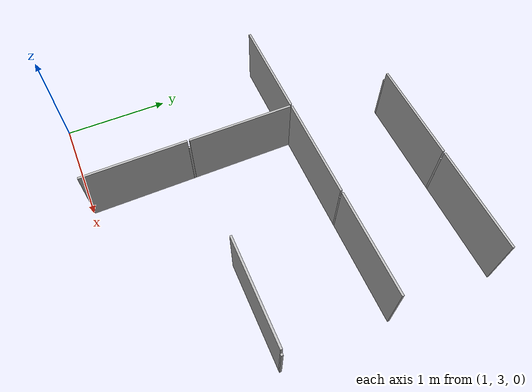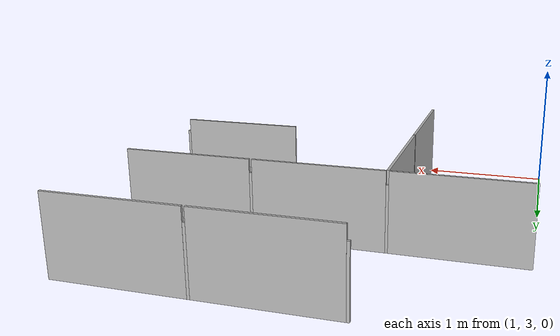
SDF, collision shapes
<sdf version="1.7">
 <model name="maze_midterm_validation">
  <link name="metal_joint_2_4::link">
   <pose>2 4 0.25 0 -0 0</pose>
   <visual name="visual_metal_joint_0">
    <geometry><box><size>0.02 0.02 0.5</size></box></geometry>
    <material>
     <script>
      <uri>model://metal_joint/materials/scripts</uri>
      <uri>model://metal_joint/materials/textures</uri>
      <name>metal_joint</name>
     </script>
     <shader type="pixel"/>
    </material>
   </visual>
   <collision name="metal_joint_01">
    <geometry><box><size>0.02 0.02 0.5</size></box></geometry>
    <surface>
     <friction>
      <ode><mu>1</mu><mu2>1</mu2><fdir1>0 0 0</fdir1><slip1>0</slip1><slip2>0</slip2></ode>
      <torsional>
       <coefficient>1</coefficient>
       <patch_radius>0</patch_radius>
       <surface_radius>0</surface_radius>
       <use_patch_radius>1</use_patch_radius>
       <ode><slip>0</slip></ode>
      </torsional>
     </friction>
     <bounce><restitution_coefficient>0</restitution_coefficient><threshold>1e+06</threshold></bounce>
     <contact>
      <collide_without_contact>0</collide_without_contact>
      <collide_without_contact_bitmask>1</collide_without_contact_bitmask>
      <collide_bitmask>1</collide_bitmask>
      <ode>
       <soft_cfm>0</soft_cfm>
       <soft_erp>0.2</soft_erp>
       <kp>1e+13</kp>
       <kd>1</kd>
       <max_vel>0.01</max_vel>
       <min_depth>0</min_depth>
      </ode>
      <bullet>
       <split_impulse>1</split_impulse>
       <split_impulse_penetration_threshold>-0.01</split_impulse_penetration_threshold>
       <soft_cfm>0</soft_cfm>
       <soft_erp>0.2</soft_erp>
       <kp>1e+13</kp>
       <kd>1</kd>
      </bullet>
     </contact>
    </surface>
   </collision>
  </link>
  <link name="metal_joint_2_5::link">
   <pose>2 5 0.25 0 -0 0</pose>
   <visual name="visual_metal_joint_0">
    <geometry><box><size>0.02 0.02 0.5</size></box></geometry>
    <material>
     <script>
      <uri>model://metal_joint/materials/scripts</uri>
      <uri>model://metal_joint/materials/textures</uri>
      <name>metal_joint</name>
     </script>
     <shader type="pixel"/>
    </material>
   </visual>
   <collision name="metal_joint_01">
    <geometry><box><size>0.02 0.02 0.5</size></box></geometry>
    <surface>
     <friction>
      <ode><mu>1</mu><mu2>1</mu2><fdir1>0 0 0</fdir1><slip1>0</slip1><slip2>0</slip2></ode>
      <torsional>
       <coefficient>1</coefficient>
       <patch_radius>0</patch_radius>
       <surface_radius>0</surface_radius>
       <use_patch_radius>1</use_patch_radius>
       <ode><slip>0</slip></ode>
      </torsional>
     </friction>
     <bounce><restitution_coefficient>0</restitution_coefficient><threshold>1e+06</threshold></bounce>
     <contact>
      <collide_without_contact>0</collide_without_contact>
      <collide_without_contact_bitmask>1</collide_without_contact_bitmask>
      <collide_bitmask>1</collide_bitmask>
      <ode>
       <soft_cfm>0</soft_cfm>
       <soft_erp>0.2</soft_erp>
       <kp>1e+13</kp>
       <kd>1</kd>
       <max_vel>0.01</max_vel>
       <min_depth>0</min_depth>
      </ode>
      <bullet>
       <split_impulse>1</split_impulse>
       <split_impulse_penetration_threshold>-0.01</split_impulse_penetration_threshold>
       <soft_cfm>0</soft_cfm>
       <soft_erp>0.2</soft_erp>
       <kp>1e+13</kp>
       <kd>1</kd>
      </bullet>
     </contact>
    </surface>
   </collision>
  </link>
  <link name="metal_joint_2_6_b::link">
   <pose>2 6 0.25 0 -0 0</pose>
   <visual name="visual_metal_joint_0">
    <geometry><box><size>0.02 0.02 0.5</size></box></geometry>
    <material>
     <script>
      <uri>model://metal_joint/materials/scripts</uri>
      <uri>model://metal_joint/materials/textures</uri>
      <name>metal_joint</name>
     </script>
     <shader type="pixel"/>
    </material>
   </visual>
   <collision name="metal_joint_01">
    <geometry><box><size>0.02 0.02 0.5</size></box></geometry>
    <surface>
     <friction>
      <ode><mu>1</mu><mu2>1</mu2><fdir1>0 0 0</fdir1><slip1>0</slip1><slip2>0</slip2></ode>
      <torsional>
       <coefficient>1</coefficient>
       <patch_radius>0</patch_radius>
       <surface_radius>0</surface_radius>
       <use_patch_radius>1</use_patch_radius>
       <ode><slip>0</slip></ode>
      </torsional>
     </friction>
     <bounce><restitution_coefficient>0</restitution_coefficient><threshold>1e+06</threshold></bounce>
     <contact>
      <collide_without_contact>0</collide_without_contact>
      <collide_without_contact_bitmask>1</collide_without_contact_bitmask>
      <collide_bitmask>1</collide_bitmask>
      <ode>
       <soft_cfm>0</soft_cfm>
       <soft_erp>0.2</soft_erp>
       <kp>1e+13</kp>
       <kd>1</kd>
       <max_vel>0.01</max_vel>
       <min_depth>0</min_depth>
      </ode>
      <bullet>
       <split_impulse>1</split_impulse>
       <split_impulse_penetration_threshold>-0.01</split_impulse_penetration_threshold>
       <soft_cfm>0</soft_cfm>
       <soft_erp>0.2</soft_erp>
       <kp>1e+13</kp>
       <kd>1</kd>
      </bullet>
     </contact>
    </surface>
   </collision>
  </link>
  <link name="metal_joint_3_5::link">
   <pose>3 5 0.25 0 -0 0</pose>
   <visual name="visual_metal_joint_0">
    <geometry><box><size>0.02 0.02 0.5</size></box></geometry>
    <material>
     <script>
      <uri>model://metal_joint/materials/scripts</uri>
      <uri>model://metal_joint/materials/textures</uri>
      <name>metal_joint</name>
     </script>
     <shader type="pixel"/>
    </material>
   </visual>
   <collision name="metal_joint_01">
    <geometry><box><size>0.02 0.02 0.5</size></box></geometry>
    <surface>
     <friction>
      <ode><mu>1</mu><mu2>1</mu2><fdir1>0 0 0</fdir1><slip1>0</slip1><slip2>0</slip2></ode>
      <torsional>
       <coefficient>1</coefficient>
       <patch_radius>0</patch_radius>
       <surface_radius>0</surface_radius>
       <use_patch_radius>1</use_patch_radius>
       <ode><slip>0</slip></ode>
      </torsional>
     </friction>
     <bounce><restitution_coefficient>0</restitution_coefficient><threshold>1e+06</threshold></bounce>
     <contact>
      <collide_without_contact>0</collide_without_contact>
      <collide_without_contact_bitmask>1</collide_without_contact_bitmask>
      <collide_bitmask>1</collide_bitmask>
      <ode>
       <soft_cfm>0</soft_cfm>
       <soft_erp>0.2</soft_erp>
       <kp>1e+13</kp>
       <kd>1</kd>
       <max_vel>0.01</max_vel>
       <min_depth>0</min_depth>
      </ode>
      <bullet>
       <split_impulse>1</split_impulse>
       <split_impulse_penetration_threshold>-0.01</split_impulse_penetration_threshold>
       <soft_cfm>0</soft_cfm>
       <soft_erp>0.2</soft_erp>
       <kp>1e+13</kp>
       <kd>1</kd>
      </bullet>
     </contact>
    </surface>
   </collision>
  </link>
  <link name="metal_joint_3_6_b::link">
   <pose>3 6 0.25 0 -0 0</pose>
   <visual name="visual_metal_joint_0">
    <geometry><box><size>0.02 0.02 0.5</size></box></geometry>
    <material>
     <script>
      <uri>model://metal_joint/materials/scripts</uri>
      <uri>model://metal_joint/materials/textures</uri>
      <name>metal_joint</name>
     </script>
     <shader type="pixel"/>
    </material>
   </visual>
   <collision name="metal_joint_01">
    <geometry><box><size>0.02 0.02 0.5</size></box></geometry>
    <surface>
     <friction>
      <ode><mu>1</mu><mu2>1</mu2><fdir1>0 0 0</fdir1><slip1>0</slip1><slip2>0</slip2></ode>
      <torsional>
       <coefficient>1</coefficient>
       <patch_radius>0</patch_radius>
       <surface_radius>0</surface_radius>
       <use_patch_radius>1</use_patch_radius>
       <ode><slip>0</slip></ode>
      </torsional>
     </friction>
     <bounce><restitution_coefficient>0</restitution_coefficient><threshold>1e+06</threshold></bounce>
     <contact>
      <collide_without_contact>0</collide_without_contact>
      <collide_without_contact_bitmask>1</collide_without_contact_bitmask>
      <collide_bitmask>1</collide_bitmask>
      <ode>
       <soft_cfm>0</soft_cfm>
       <soft_erp>0.2</soft_erp>
       <kp>1e+13</kp>
       <kd>1</kd>
       <max_vel>0.01</max_vel>
       <min_depth>0</min_depth>
      </ode>
      <bullet>
       <split_impulse>1</split_impulse>
       <split_impulse_penetration_threshold>-0.01</split_impulse_penetration_threshold>
       <soft_cfm>0</soft_cfm>
       <soft_erp>0.2</soft_erp>
       <kp>1e+13</kp>
       <kd>1</kd>
      </bullet>
     </contact>
    </surface>
   </collision>
  </link>
  <link name="metal_joint_4_4::link">
   <pose>4 4 0.25 0 -0 0</pose>
   <visual name="visual_metal_joint_0">
    <geometry><box><size>0.02 0.02 0.5</size></box></geometry>
    <material>
     <script>
      <uri>model://metal_joint/materials/scripts</uri>
      <uri>model://metal_joint/materials/textures</uri>
      <name>metal_joint</name>
     </script>
     <shader type="pixel"/>
    </material>
   </visual>
   <collision name="metal_joint_01">
    <geometry><box><size>0.02 0.02 0.5</size></box></geometry>
    <surface>
     <friction>
      <ode><mu>1</mu><mu2>1</mu2><fdir1>0 0 0</fdir1><slip1>0</slip1><slip2>0</slip2></ode>
      <torsional>
       <coefficient>1</coefficient>
       <patch_radius>0</patch_radius>
       <surface_radius>0</surface_radius>
       <use_patch_radius>1</use_patch_radius>
       <ode><slip>0</slip></ode>
      </torsional>
     </friction>
     <bounce><restitution_coefficient>0</restitution_coefficient><threshold>1e+06</threshold></bounce>
     <contact>
      <collide_without_contact>0</collide_without_contact>
      <collide_without_contact_bitmask>1</collide_without_contact_bitmask>
      <collide_bitmask>1</collide_bitmask>
      <ode>
       <soft_cfm>0</soft_cfm>
       <soft_erp>0.2</soft_erp>
       <kp>1e+13</kp>
       <kd>1</kd>
       <max_vel>0.01</max_vel>
       <min_depth>0</min_depth>
      </ode>
      <bullet>
       <split_impulse>1</split_impulse>
       <split_impulse_penetration_threshold>-0.01</split_impulse_penetration_threshold>
       <soft_cfm>0</soft_cfm>
       <soft_erp>0.2</soft_erp>
       <kp>1e+13</kp>
       <kd>1</kd>
      </bullet>
     </contact>
    </surface>
   </collision>
  </link>
  <link name="metal_plate_2_4_a::main">
   <pose>2 4 0 0 -0 0</pose>
   <visual name="visual">
    <pose>0.01 -0.01 0 3.14159 -1.57059 3.14159</pose>
    <geometry><mesh><scale>1 1 1</scale><uri>model://metal_plate/meshes/metal_plate.dae</uri></mesh></geometry>
    <material><shader type="pixel"/></material>
   </visual>
   <collision name="collision">
    <pose>0 -0.5 0.3 -1.571 -0 -1.571</pose>
    <geometry><box><size>0.98 0.6 0.02</size></box></geometry>
    <surface>
     <friction>
      <ode><mu>1</mu><mu2>1</mu2><fdir1>0 0 0</fdir1><slip1>0</slip1><slip2>0</slip2></ode>
      <torsional>
       <coefficient>1</coefficient>
       <patch_radius>0</patch_radius>
       <surface_radius>0</surface_radius>
       <use_patch_radius>1</use_patch_radius>
       <ode><slip>0</slip></ode>
      </torsional>
     </friction>
     <bounce><restitution_coefficient>0</restitution_coefficient><threshold>1e+06</threshold></bounce>
     <contact>
      <collide_without_contact>0</collide_without_contact>
      <collide_without_contact_bitmask>1</collide_without_contact_bitmask>
      <collide_bitmask>1</collide_bitmask>
      <ode>
       <soft_cfm>0</soft_cfm>
       <soft_erp>0.2</soft_erp>
       <kp>1e+13</kp>
       <kd>1</kd>
       <max_vel>0.01</max_vel>
       <min_depth>0</min_depth>
      </ode>
      <bullet>
       <split_impulse>1</split_impulse>
       <split_impulse_penetration_threshold>-0.01</split_impulse_penetration_threshold>
       <soft_cfm>0</soft_cfm>
       <soft_erp>0.2</soft_erp>
       <kp>1e+13</kp>
       <kd>1</kd>
      </bullet>
     </contact>
    </surface>
   </collision>
  </link>
  <link name="metal_plate_2_5_a::main">
   <pose>2 5 0 0 -0 0</pose>
   <visual name="visual">
    <pose>0.01 -0.01 0 3.14159 -1.57059 3.14159</pose>
    <geometry><mesh><scale>1 1 1</scale><uri>model://metal_plate/meshes/metal_plate.dae</uri></mesh></geometry>
    <material><shader type="pixel"/></material>
   </visual>
   <collision name="collision">
    <pose>0 -0.5 0.3 -1.571 -0 -1.571</pose>
    <geometry><box><size>0.98 0.6 0.02</size></box></geometry>
    <surface>
     <friction>
      <ode><mu>1</mu><mu2>1</mu2><fdir1>0 0 0</fdir1><slip1>0</slip1><slip2>0</slip2></ode>
      <torsional>
       <coefficient>1</coefficient>
       <patch_radius>0</patch_radius>
       <surface_radius>0</surface_radius>
       <use_patch_radius>1</use_patch_radius>
       <ode><slip>0</slip></ode>
      </torsional>
     </friction>
     <bounce><restitution_coefficient>0</restitution_coefficient><threshold>1e+06</threshold></bounce>
     <contact>
      <collide_without_contact>0</collide_without_contact>
      <collide_without_contact_bitmask>1</collide_without_contact_bitmask>
      <collide_bitmask>1</collide_bitmask>
      <ode>
       <soft_cfm>0</soft_cfm>
       <soft_erp>0.2</soft_erp>
       <kp>1e+13</kp>
       <kd>1</kd>
       <max_vel>0.01</max_vel>
       <min_depth>0</min_depth>
      </ode>
      <bullet>
       <split_impulse>1</split_impulse>
       <split_impulse_penetration_threshold>-0.01</split_impulse_penetration_threshold>
       <soft_cfm>0</soft_cfm>
       <soft_erp>0.2</soft_erp>
       <kp>1e+13</kp>
       <kd>1</kd>
      </bullet>
     </contact>
    </surface>
   </collision>
  </link>
  <link name="metal_plate_2_5_c::main">
   <pose>2 5 0 0 0 -1.5708</pose>
   <visual name="visual">
    <pose>0.01 -0.01 0 3.14159 -1.57059 3.14159</pose>
    <geometry><mesh><scale>1 1 1</scale><uri>model://metal_plate/meshes/metal_plate.dae</uri></mesh></geometry>
    <material><shader type="pixel"/></material>
   </visual>
   <collision name="collision">
    <pose>0 -0.5 0.3 -1.571 -0 -1.571</pose>
    <geometry><box><size>0.98 0.6 0.02</size></box></geometry>
    <surface>
     <friction>
      <ode><mu>1</mu><mu2>1</mu2><fdir1>0 0 0</fdir1><slip1>0</slip1><slip2>0</slip2></ode>
      <torsional>
       <coefficient>1</coefficient>
       <patch_radius>0</patch_radius>
       <surface_radius>0</surface_radius>
       <use_patch_radius>1</use_patch_radius>
       <ode><slip>0</slip></ode>
      </torsional>
     </friction>
     <bounce><restitution_coefficient>0</restitution_coefficient><threshold>1e+06</threshold></bounce>
     <contact>
      <collide_without_contact>0</collide_without_contact>
      <collide_without_contact_bitmask>1</collide_without_contact_bitmask>
      <collide_bitmask>1</collide_bitmask>
      <ode>
       <soft_cfm>0</soft_cfm>
       <soft_erp>0.2</soft_erp>
       <kp>1e+13</kp>
       <kd>1</kd>
       <max_vel>0.01</max_vel>
       <min_depth>0</min_depth>
      </ode>
      <bullet>
       <split_impulse>1</split_impulse>
       <split_impulse_penetration_threshold>-0.01</split_impulse_penetration_threshold>
       <soft_cfm>0</soft_cfm>
       <soft_erp>0.2</soft_erp>
       <kp>1e+13</kp>
       <kd>1</kd>
      </bullet>
     </contact>
    </surface>
   </collision>
  </link>
  <link name="metal_plate_2_6_b::main">
   <pose>2 6 0 0 -0 1.571</pose>
   <visual name="visual">
    <pose>0.01 -0.01 0 3.14159 -1.57059 3.14159</pose>
    <geometry><mesh><scale>1 1 1</scale><uri>model://metal_plate/meshes/metal_plate.dae</uri></mesh></geometry>
    <material><shader type="pixel"/></material>
   </visual>
   <collision name="collision">
    <pose>0 -0.5 0.3 -1.571 -0 -1.571</pose>
    <geometry><box><size>0.98 0.6 0.02</size></box></geometry>
    <surface>
     <friction>
      <ode><mu>1</mu><mu2>1</mu2><fdir1>0 0 0</fdir1><slip1>0</slip1><slip2>0</slip2></ode>
      <torsional>
       <coefficient>1</coefficient>
       <patch_radius>0</patch_radius>
       <surface_radius>0</surface_radius>
       <use_patch_radius>1</use_patch_radius>
       <ode><slip>0</slip></ode>
      </torsional>
     </friction>
     <bounce><restitution_coefficient>0</restitution_coefficient><threshold>1e+06</threshold></bounce>
     <contact>
      <collide_without_contact>0</collide_without_contact>
      <collide_without_contact_bitmask>1</collide_without_contact_bitmask>
      <collide_bitmask>1</collide_bitmask>
      <ode>
       <soft_cfm>0</soft_cfm>
       <soft_erp>0.2</soft_erp>
       <kp>1e+13</kp>
       <kd>1</kd>
       <max_vel>0.01</max_vel>
       <min_depth>0</min_depth>
      </ode>
      <bullet>
       <split_impulse>1</split_impulse>
       <split_impulse_penetration_threshold>-0.01</split_impulse_penetration_threshold>
       <soft_cfm>0</soft_cfm>
       <soft_erp>0.2</soft_erp>
       <kp>1e+13</kp>
       <kd>1</kd>
      </bullet>
     </contact>
    </surface>
   </collision>
  </link>
  <link name="metal_plate_3_5_c::main">
   <pose>3 5 0 0 0 -1.5708</pose>
   <visual name="visual">
    <pose>0.01 -0.01 0 3.14159 -1.57059 3.14159</pose>
    <geometry><mesh><scale>1 1 1</scale><uri>model://metal_plate/meshes/metal_plate.dae</uri></mesh></geometry>
    <material><shader type="pixel"/></material>
   </visual>
   <collision name="collision">
    <pose>0 -0.5 0.3 -1.571 -0 -1.571</pose>
    <geometry><box><size>0.98 0.6 0.02</size></box></geometry>
    <surface>
     <friction>
      <ode><mu>1</mu><mu2>1</mu2><fdir1>0 0 0</fdir1><slip1>0</slip1><slip2>0</slip2></ode>
      <torsional>
       <coefficient>1</coefficient>
       <patch_radius>0</patch_radius>
       <surface_radius>0</surface_radius>
       <use_patch_radius>1</use_patch_radius>
       <ode><slip>0</slip></ode>
      </torsional>
     </friction>
     <bounce><restitution_coefficient>0</restitution_coefficient><threshold>1e+06</threshold></bounce>
     <contact>
      <collide_without_contact>0</collide_without_contact>
      <collide_without_contact_bitmask>1</collide_without_contact_bitmask>
      <collide_bitmask>1</collide_bitmask>
      <ode>
       <soft_cfm>0</soft_cfm>
       <soft_erp>0.2</soft_erp>
       <kp>1e+13</kp>
       <kd>1</kd>
       <max_vel>0.01</max_vel>
       <min_depth>0</min_depth>
      </ode>
      <bullet>
       <split_impulse>1</split_impulse>
       <split_impulse_penetration_threshold>-0.01</split_impulse_penetration_threshold>
       <soft_cfm>0</soft_cfm>
       <soft_erp>0.2</soft_erp>
       <kp>1e+13</kp>
       <kd>1</kd>
      </bullet>
     </contact>
    </surface>
   </collision>
  </link>
  <link name="metal_plate_3_6_b::main">
   <pose>3 6 0 0 -0 1.571</pose>
   <visual name="visual">
    <pose>0.01 -0.01 0 3.14159 -1.57059 3.14159</pose>
    <geometry><mesh><scale>1 1 1</scale><uri>model://metal_plate/meshes/metal_plate.dae</uri></mesh></geometry>
    <material><shader type="pixel"/></material>
   </visual>
   <collision name="collision">
    <pose>0 -0.5 0.3 -1.571 -0 -1.571</pose>
    <geometry><box><size>0.98 0.6 0.02</size></box></geometry>
    <surface>
     <friction>
      <ode><mu>1</mu><mu2>1</mu2><fdir1>0 0 0</fdir1><slip1>0</slip1><slip2>0</slip2></ode>
      <torsional>
       <coefficient>1</coefficient>
       <patch_radius>0</patch_radius>
       <surface_radius>0</surface_radius>
       <use_patch_radius>1</use_patch_radius>
       <ode><slip>0</slip></ode>
      </torsional>
     </friction>
     <bounce><restitution_coefficient>0</restitution_coefficient><threshold>1e+06</threshold></bounce>
     <contact>
      <collide_without_contact>0</collide_without_contact>
      <collide_without_contact_bitmask>1</collide_without_contact_bitmask>
      <collide_bitmask>1</collide_bitmask>
      <ode>
       <soft_cfm>0</soft_cfm>
       <soft_erp>0.2</soft_erp>
       <kp>1e+13</kp>
       <kd>1</kd>
       <max_vel>0.01</max_vel>
       <min_depth>0</min_depth>
      </ode>
      <bullet>
       <split_impulse>1</split_impulse>
       <split_impulse_penetration_threshold>-0.01</split_impulse_penetration_threshold>
       <soft_cfm>0</soft_cfm>
       <soft_erp>0.2</soft_erp>
       <kp>1e+13</kp>
       <kd>1</kd>
      </bullet>
     </contact>
    </surface>
   </collision>
  </link>
  <link name="metal_plate_4_4_c::main">
   <pose>4 4 0 0 0 -1.5708</pose>
   <visual name="visual">
    <pose>0.01 -0.01 0 3.14159 -1.57059 3.14159</pose>
    <geometry><mesh><scale>1 1 1</scale><uri>model://metal_plate/meshes/metal_plate.dae</uri></mesh></geometry>
    <material><shader type="pixel"/></material>
   </visual>
   <collision name="collision">
    <pose>0 -0.5 0.3 -1.571 -0 -1.571</pose>
    <geometry><box><size>0.98 0.6 0.02</size></box></geometry>
    <surface>
     <friction>
      <ode><mu>1</mu><mu2>1</mu2><fdir1>0 0 0</fdir1><slip1>0</slip1><slip2>0</slip2></ode>
      <torsional>
       <coefficient>1</coefficient>
       <patch_radius>0</patch_radius>
       <surface_radius>0</surface_radius>
       <use_patch_radius>1</use_patch_radius>
       <ode><slip>0</slip></ode>
      </torsional>
     </friction>
     <bounce><restitution_coefficient>0</restitution_coefficient><threshold>1e+06</threshold></bounce>
     <contact>
      <collide_without_contact>0</collide_without_contact>
      <collide_without_contact_bitmask>1</collide_without_contact_bitmask>
      <collide_bitmask>1</collide_bitmask>
      <ode>
       <soft_cfm>0</soft_cfm>
       <soft_erp>0.2</soft_erp>
       <kp>1e+13</kp>
       <kd>1</kd>
       <max_vel>0.01</max_vel>
       <min_depth>0</min_depth>
      </ode>
      <bullet>
       <split_impulse>1</split_impulse>
       <split_impulse_penetration_threshold>-0.01</split_impulse_penetration_threshold>
       <soft_cfm>0</soft_cfm>
       <soft_erp>0.2</soft_erp>
       <kp>1e+13</kp>
       <kd>1</kd>
      </bullet>
     </contact>
    </surface>
   </collision>
  </link>
  <link name="metal_plate_4_5_c::main">
   <pose>4 5 0 0 0 -1.5708</pose>
   <visual name="visual">
    <pose>0.01 -0.01 0 3.14159 -1.57059 3.14159</pose>
    <geometry><mesh><scale>1 1 1</scale><uri>model://metal_plate/meshes/metal_plate.dae</uri></mesh></geometry>
    <material><shader type="pixel"/></material>
   </visual>
   <collision name="collision">
    <pose>0 -0.5 0.3 -1.571 -0 -1.571</pose>
    <geometry><box><size>0.98 0.6 0.02</size></box></geometry>
    <surface>
     <friction>
      <ode><mu>1</mu><mu2>1</mu2><fdir1>0 0 0</fdir1><slip1>0</slip1><slip2>0</slip2></ode>
      <torsional>
       <coefficient>1</coefficient>
       <patch_radius>0</patch_radius>
       <surface_radius>0</surface_radius>
       <use_patch_radius>1</use_patch_radius>
       <ode><slip>0</slip></ode>
      </torsional>
     </friction>
     <bounce><restitution_coefficient>0</restitution_coefficient><threshold>1e+06</threshold></bounce>
     <contact>
      <collide_without_contact>0</collide_without_contact>
      <collide_without_contact_bitmask>1</collide_without_contact_bitmask>
      <collide_bitmask>1</collide_bitmask>
      <ode>
       <soft_cfm>0</soft_cfm>
       <soft_erp>0.2</soft_erp>
       <kp>1e+13</kp>
       <kd>1</kd>
       <max_vel>0.01</max_vel>
       <min_depth>0</min_depth>
      </ode>
      <bullet>
       <split_impulse>1</split_impulse>
       <split_impulse_penetration_threshold>-0.01</split_impulse_penetration_threshold>
       <soft_cfm>0</soft_cfm>
       <soft_erp>0.2</soft_erp>
       <kp>1e+13</kp>
       <kd>1</kd>
      </bullet>
     </contact>
    </surface>
   </collision>
  </link>
  <static>1</static>
 </model>
</sdf>
